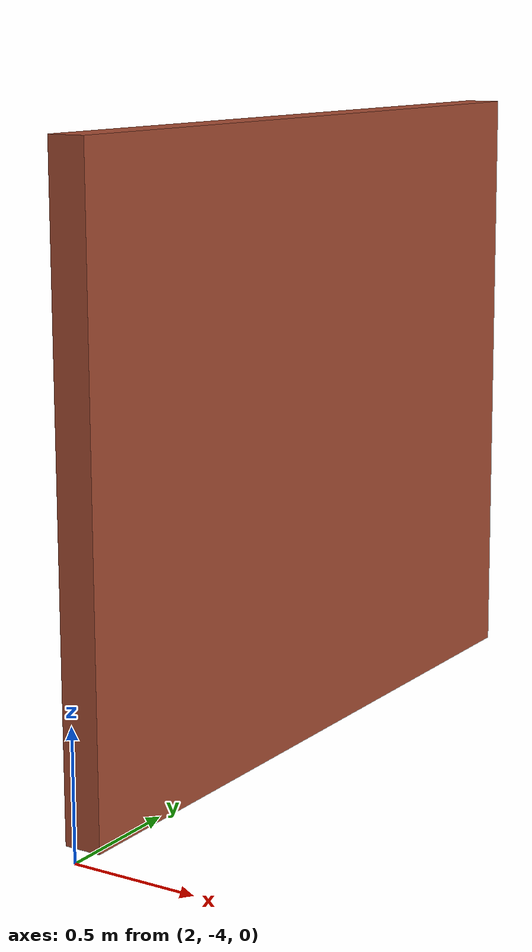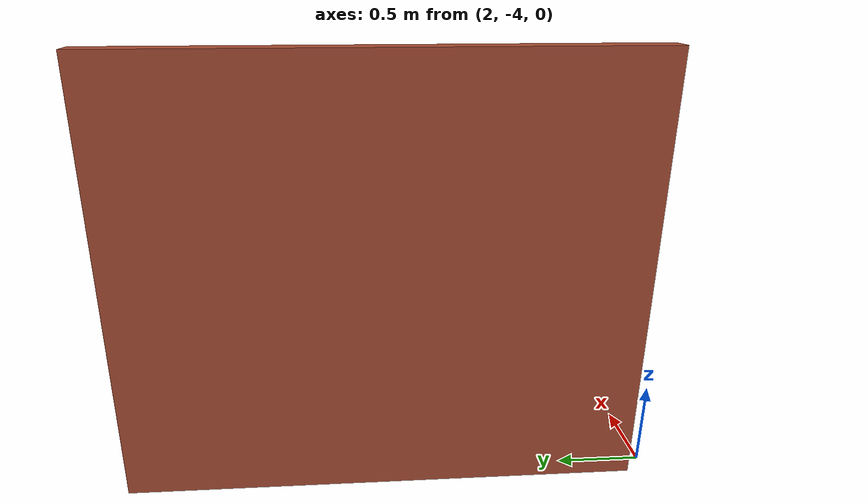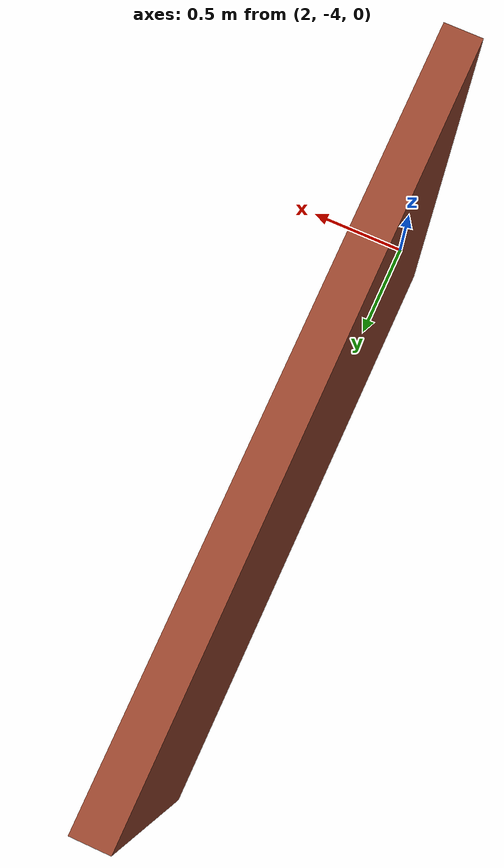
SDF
<?xml version='1.0'?>
<sdf version='1.7'>
  <model name='Untitled'>
    <pose>1.0125 -1.9475 0 0 -0 0</pose>
    <link name='Wall_0'>
      <collision name='Wall_0_Collision'>
        <geometry>
          <box>
            <size>3 0.15 2.5</size>
          </box>
        </geometry>
        <pose>0 0 1.25 0 -0 0</pose>
      </collision>
      <visual name='Wall_0_Visual'>
        <pose>0 0 1.25 0 -0 0</pose>
        <geometry>
          <box>
            <size>3 0.15 2.5</size>
          </box>
        </geometry>
        <material>
          <script>
            <uri>file://media/materials/scripts/gazebo.material</uri>
            <name>Gazebo/Bricks</name>
          </script>
          <ambient>1 1 1 1</ambient>
        </material>
        <meta>
          <layer>0</layer>
        </meta>
      </visual>
      <pose>0.9375 -0.4475 0 0 -0 1.5708</pose>
    </link>
    <static>1</static>
  </model>
</sdf>
